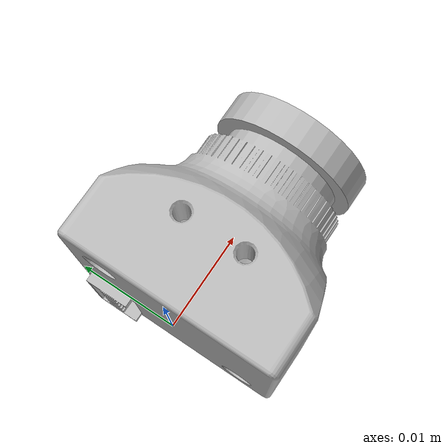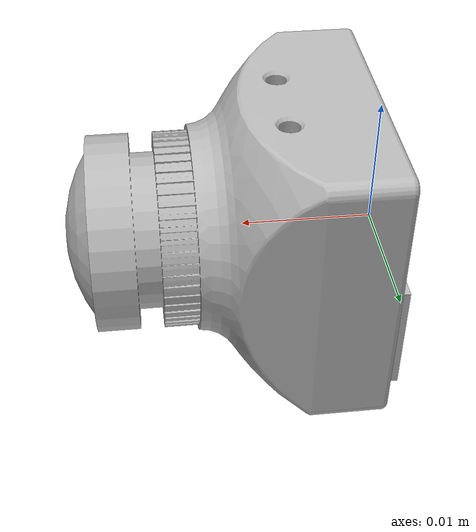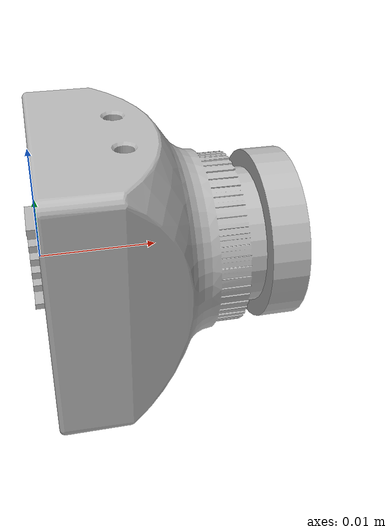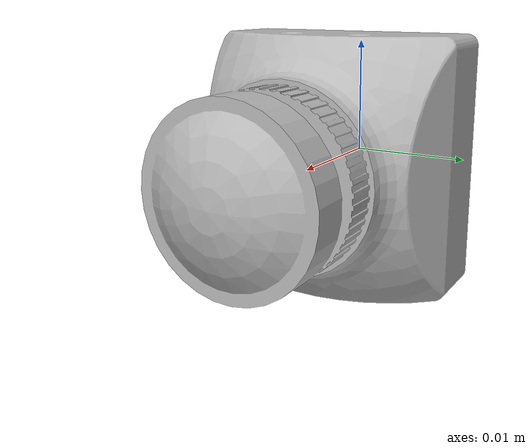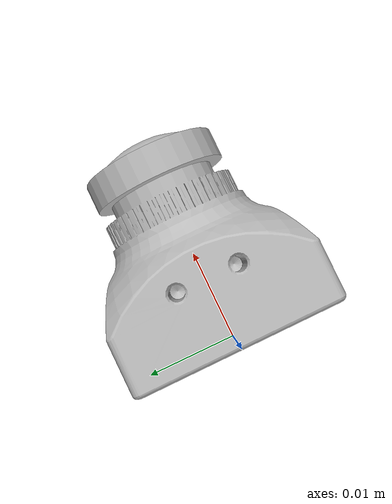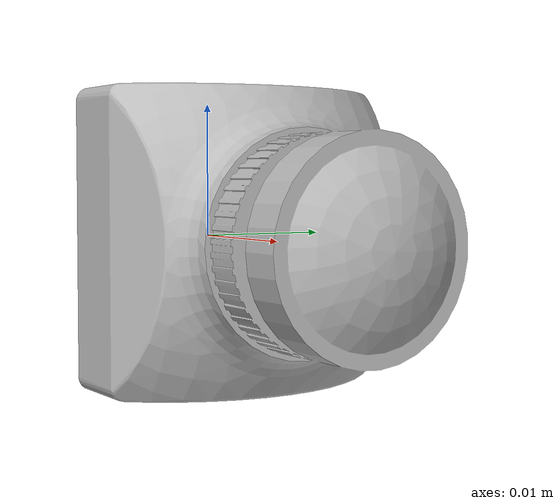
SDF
<?xml version="1.0" encoding="UTF-8"?>
<sdf version="1.9">
  <model name="foxeer_t_rex_mini_camera">
    <self_collide>false</self_collide>
    <static>false</static>

    <link name="foxeer_t_rex_mini_link">
      <inertial>
        <mass>0.000001</mass>
        <inertia>
          <ixx>1e-12</ixx>
          <iyy>1e-12</iyy>
          <izz>1e-12</izz>
          <ixy>0</ixy>
          <ixz>0</ixz>
          <iyz>0</iyz>
        </inertia>
      </inertial>

      <visual name="foxeer_t_rex_mini_visual">
        <!-- The STEP/OBJ lens axis is local +Z. Normalize the reusable model
             to Gazebo's camera convention, where link-local +X is forward. -->
        <pose>0 0 0 0 1.5707963267948966 0</pose>
        <geometry>
          <mesh>
            <scale>1 1 1</scale>
            <uri>model://foxeer_t_rex_mini_camera/meshes/foxeer_t_rex_mini.obj</uri>
          </mesh>
        </geometry>
      </visual>

      <sensor name="imager" type="camera">
        <!-- The lens shoulder is 21.5 mm along mesh-local +Z, which maps to
             the normalized link's +X optical axis. -->
        <pose>0.0215 0 0 0 0 0</pose>
        <camera>
          <horizontal_fov>2.0943951023931953</horizontal_fov>
          <image>
            <width>640</width>
            <height>480</height>
            <format>R8G8B8</format>
          </image>
          <clip>
            <near>0.01</near>
            <far>50</far>
          </clip>
        </camera>
        <!-- Render only when a Gazebo or ROS subscriber requests the FPV feed. -->
        <always_on>false</always_on>
        <update_rate>30</update_rate>
        <visualize>false</visualize>
      </sensor>
    </link>
  </model>
</sdf>
